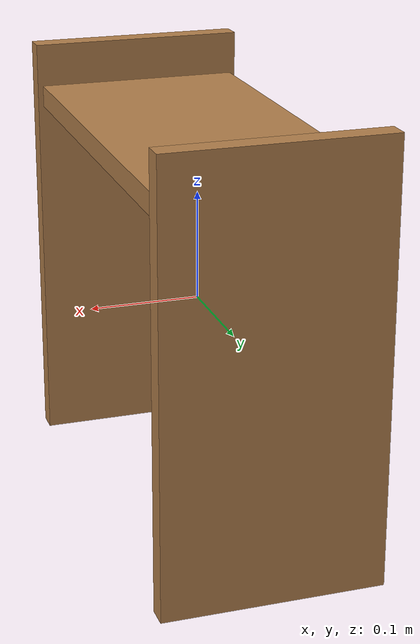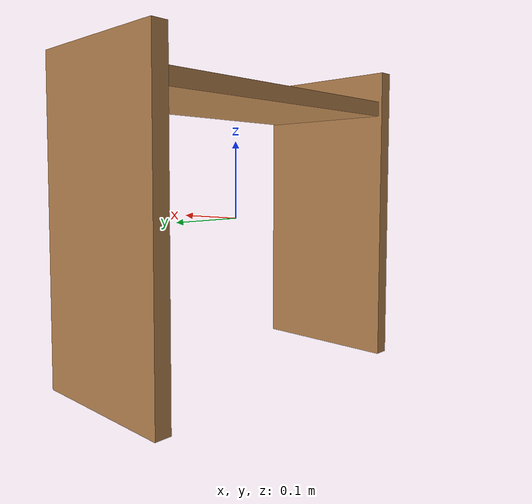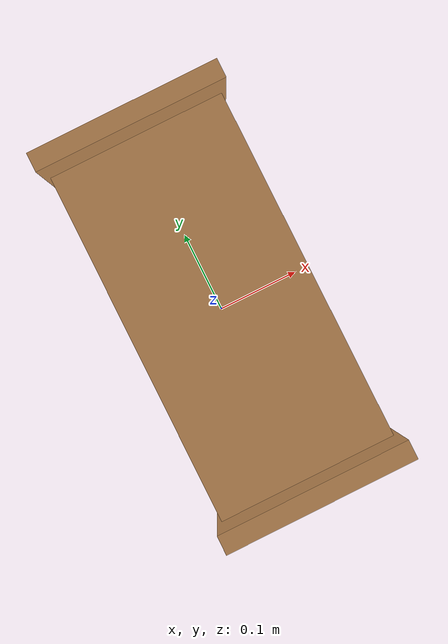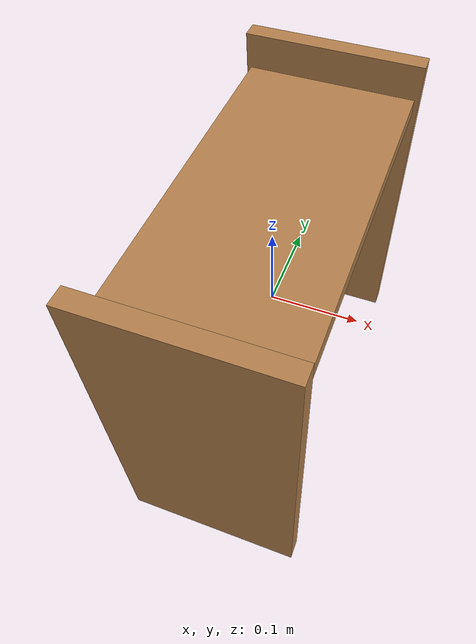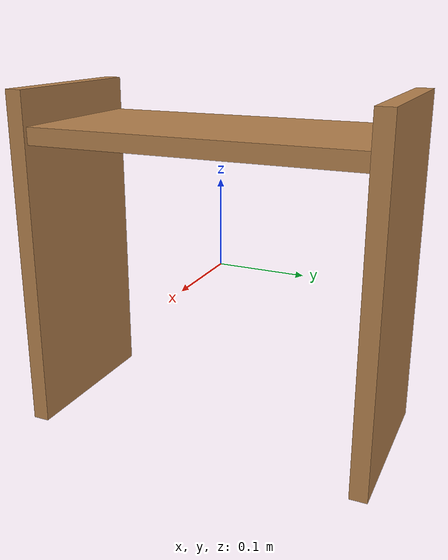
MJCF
<mujoco model="shelf">
    <asset>
        <texture file="../models/assets/textures/light-wood.png" type="cube" name="light-wood" />
        <material name="MatLightWood" texture="light-wood" texrepeat="3 3" specular="0.4" shininess="0.1" />
    </asset>
    <worldbody>
        <body>
            <body name="object">
                <body name="shelf_body" pos="0 0 0">
                    <geom name="shelf_left" type="box" size="0.1 0.01 0.2" pos="0 0.2 0" material="MatLightWood" group="1"/>
                    <geom name="shelf_right" type="box" size="0.1 0.01 0.2" pos="0 -0.2 0" material="MatLightWood" group="1"/>
                    <geom name="shelf_top" type="box" size="0.095 0.2 0.01" pos="0 0 0.15" material="MatLightWood" group="1"/>
                </body>
            </body>

            <!-- Reference sites for placement -->
            <site name="bottom_site" pos="0 0 -0.1" rgba="0 0 0 0" size="0.005"/>
            <site name="top_site" pos="0 0 0.1" rgba="0 0 0 0" size="0.005"/>
            <site name="horizontal_radius_site" pos="0 0 0" rgba="0 0 0 0" size="0.2"/>
        </body>
    </worldbody>
</mujoco>
